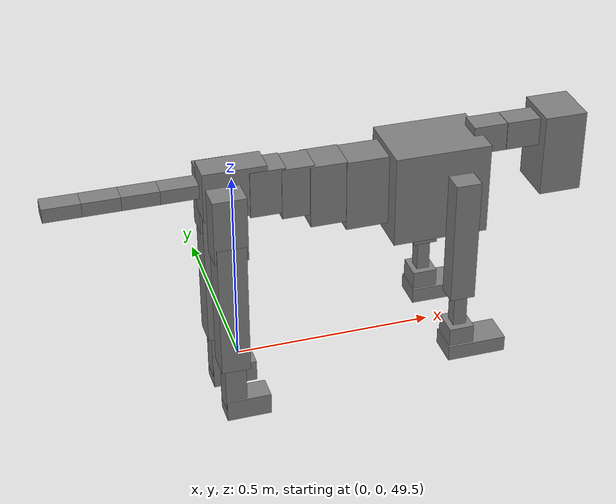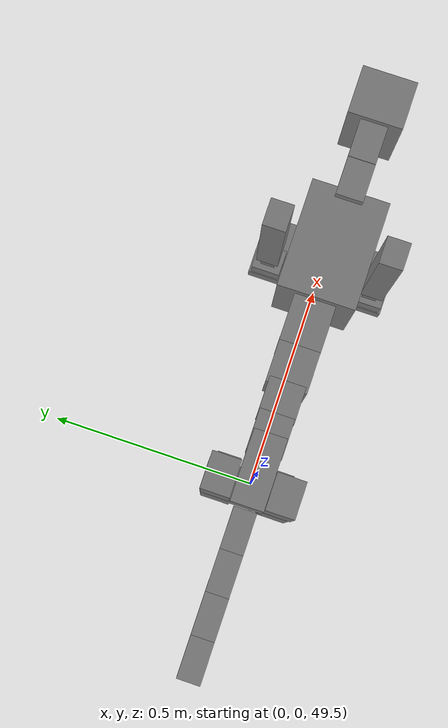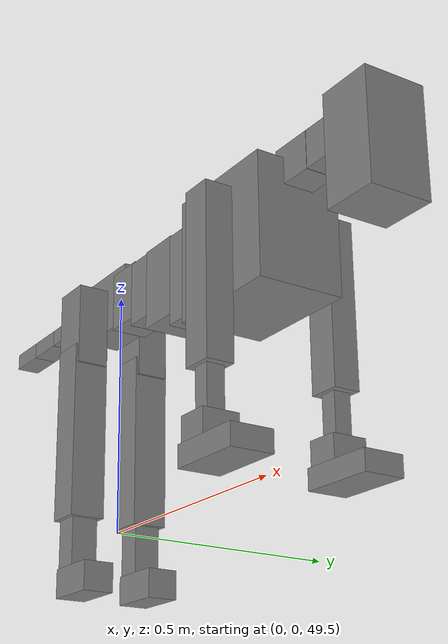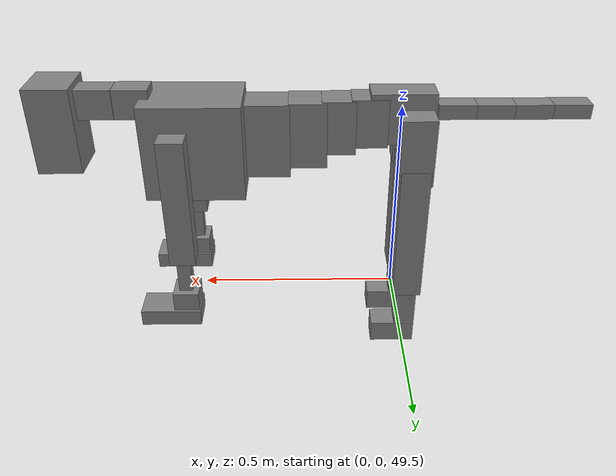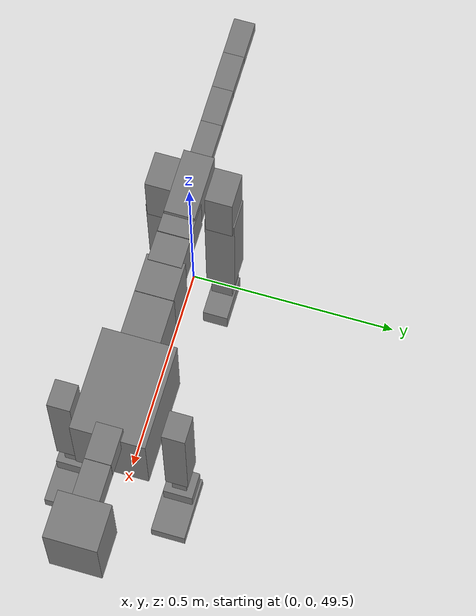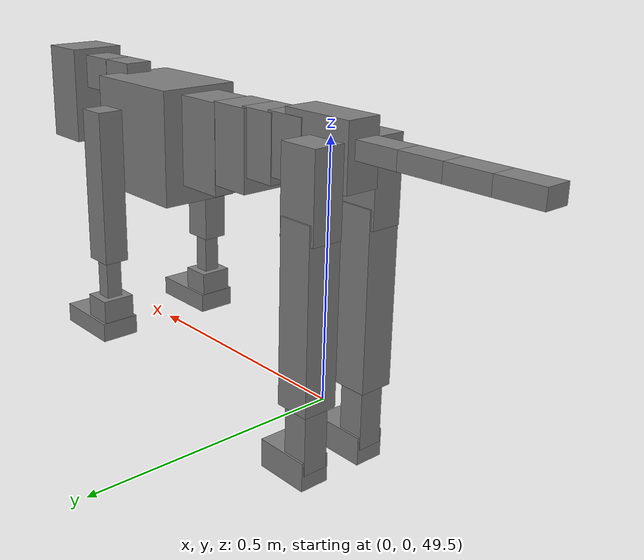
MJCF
<mujoco model="dog">

    <default>
        <joint armature="0.02" stiffness="1" damping="0.2" limited="true"/>
        <geom condim="3" friction="1 0.05 0.05" margin="0.01"/>
        <motor ctrllimited="true" ctrlrange="-1.0 1.0" forcelimited="true" gear="50"/>
    </default>

    <compiler inertiafromgeom="true" angle="radian"/>

    <option timestep="0.016" iterations="50" tolerance="1e-10" solver="Newton" jacobian="dense" cone="pyramidal"/>

    <size nconmax="20000" njmax="60000" nstack="5000000"/>
    <visual>
        <map force="0.1" zfar="30"/>
        <rgba haze="0.15 0.25 0.35 1"/>
        <quality shadowsize="2048"/>
        <global offwidth="800" offheight="800"/>
    </visual>

    <asset>
        <texture type="skybox" builtin="gradient" rgb1="0.3 0.5 0.7" rgb2="0 0 0" width="512" height="512"/>
        <texture name="texplane" type="2d" builtin="checker" rgb1=".2 .3 .4" rgb2=".1 0.15 0.2" width="512" height="512"
                 mark="cross" markrgb=".8 .8 .8"/>
        <texture name="texgeom" type="cube" builtin="flat" mark="cross" width="127" height="1278" rgb1="0.8 0.6 0.4"
                 rgb2="0.8 0.6 0.4" markrgb="1 1 1" random="0.01"/>

        <material name="matplane" reflectance="0.3" texture="texplane" texrepeat="1 1" texuniform="true"/>
        <material name="matgeom" texture="texgeom" texuniform="true" rgba="0.8 0.6 .4 1"/>
    </asset>

    <worldbody>
        <geom name="floor" pos="0 0 0" size="0 0 .25" type="plane" material="matplane" condim="3"/>

        <light directional="false" diffuse=".2 .2 .2" specular="0 0 0" pos="0 0 5" dir="0 0 -1" castshadow="false"/>
        <light mode="targetbodycom" target="torso" directional="false" diffuse=".8 .8 .8" specular="0.3 0.3 0.3"
               pos="0 0 4.0" dir="0 0 -1"/>

        <body name="root" pos="0 0 50">
            <freejoint name="root_1"/>
            <geom type="box" pos="0 0 -0.02" size="0.0774  0.0358  0.063" density="2030"/>

            <body name="spine1" pos="0.054 0 0">
                <joint name="spine1_y" axis="0 1 0" range="0 0.7" limited="true"/>
                <geom type="box" pos="0.02375 0 -0.03" size="0.04375  0.0375  0.05985" density="2030"/>

                <body name="spine2" pos="0.0612 0 0">
                    <joint name="spine2_y" axis="0 1 0" range="-0.15 0.15" limited="true"/>
                    <geom type="box" pos="0.03555  0  -0.04" size="0.04055  0.039  0.06615" density="2030"/>

                    <body name="spine3" pos="0.0730 0 0">
                        <joint name="spine3_y" axis="0 1 0" range="-0.15 0.15" limited="true"/>
                        <geom type="box" pos="0.03555  0  -0.057" size="0.04555  0.0445  0.081" density="2030"/>

                        <body name="spine4" pos="0.0780 0 0">
                            <joint name="spine4_y" axis="0 1 0" range="-0.15 0.15" limited="true"/>
                            <geom type="box" pos="0.05265  0  -0.07" size="0.05265  0.045  0.09135" density="2030"/>

                            <body name="torso" pos="0.1082 0 0">
                                <joint name="torso_y" axis="0 1 0" range="-0.15 0.15" limited="true"/>
                                <geom type="box" pos="0.11925  0  -0.085" size="0.11925  0.085  0.11745"
                                      density="2030"/>

                                <body name="neck1" pos="0.2160  0   0.0180">
                                    <joint name="neck1_y" axis="0 1 0" range="-1.2  -1" limited="true"/>
                                    <geom type="box" pos="0.0423  0  0" size="0.0423  0.03  0.036" density="2325"/>

                                    <body name="neck2" pos="0.0853  0  0">
                                        <joint name="neck2_y" axis="0 1 0" range="0.1  0" limited="true"/>
                                        <geom type="box" pos="0.0423  0  0" size="0.0423  0.03  0.036" density="2325"/>

                                        <body name="head" pos="0.0853  0  0">
                                            <joint name="head_y" axis="0 1 0" range="-0.3  -0.2" limited="true"/>
                                            <geom type="box" pos="0.0531  0  -0.055" size="0.0531  0.06  0.1044"
                                                  density="4030"/>

                                        </body>
                                    </body>
                                </body>

                                <body name="front_shoulder" pos="0.156  0   -0.0480">
                                    <joint name="front_shoulder_y" axis="0 1 0" range="-1 1.5" limited="true"/>
                                    <geom type="box" pos="0 0.13 -0.1342" size="0.0313  0.0267  0.1609" density="1158"/>
                                    <geom type="box" pos="0 -0.13 -0.1342" size="0.0313  0.0267  0.1609"
                                          density="1158"/>

                                    <body name="front_elbow" pos="0  0  -0.2684">
                                        <joint name="front_elbow_y" axis="0 1 0" range="-2 0" limited="true"/>
                                        <geom type="box" pos="0 0.13 -0.0610" size="0.0169  0.0173  0.0610"
                                              density="1081"/>
                                        <geom type="box" pos="0 -0.13 -0.0610" size="0.0169  0.0173  0.0610"
                                              density="1081"/>

                                        <body name="front_wrist" pos="0  0  -0.1221">
                                            <joint name="front_wrist_y" axis="0 1 0" range="-0.2 0" limited="true"/>
                                            <geom type="box" pos="0 0.13 -0.0250" size="0.0315  0.0350  0.0382"
                                                  density="1664"/>
                                            <geom type="box" pos="0 -0.13 -0.0250" size="0.0315  0.0350  0.0382"
                                                  density="1664"/>

                                            <body name="front_finger_end" pos="0  0  -0.0501">
                                                <joint name="front_finger_y" axis="0 1 0" range="-0.4 1"
                                                       limited="true"/>
                                                <geom type="box" pos="0.0406  0.13  -0.0052"
                                                      size="0.0745  0.0406  0.0202" density="1515"/>
                                                <geom type="box" pos="0.0406  -0.13  -0.0052"
                                                      size="0.0745  0.0406  0.0202" density="1515"/>

                                            </body>

                                        </body>
                                    </body>
                                </body>

                            </body>
                        </body>
                    </body>
                </body>
            </body>

            <body name="back_hip" pos="-0.03 0 -0.018">
                <joint name="back_hip_y" axis="0 1 0" range="-1.5 0.3" limited="true"/>
                <geom type="box" pos="0 0.07 -0.0603" size="0.0410  0.0321  0.0831" density="1154"/>
                <geom type="box" pos="0 -0.07 -0.0603" size="0.0410  0.0321  0.0831" density="1154"/>

                <body name="back_knee" pos="0  0  -0.1206">
                    <joint name="back_knee_y" axis="0 1 0" range="0 2.8" limited="true"/>
                    <geom type="box" pos="0 0.07 -0.1610" size="0.0360  0.0355  0.1766" density="1227"/>
                    <geom type="box" pos="0 -0.07 -0.1610" size="0.0360  0.0355  0.1766" density="1227"/>

                    <body name="back_ankle" pos="0  0  -0.3220">
                        <joint name="back_ankle_y" axis="0 1 0" range="-2.2 0" limited="true"/>
                        <geom type="box" pos="0 0.07 -0.0634" size="0.0265  0.0265  0.0746" density="1284"/>
                        <geom type="box" pos="0 -0.07 -0.0634" size="0.0265  0.0265  0.0746" density="1284"/>

                        <body name="back_toe_end" pos="0  0  -0.1267">
                            <joint name="back_toe_y" axis="0 1 0" range="-0.4 1" limited="true"/>
                            <geom type="box" pos="0.0307  0.07  -0.0135" size="0.0563  0.0307  0.0285" density="1515"/>
                            <geom type="box" pos="0.0307  -0.07  -0.0135" size="0.0563  0.0307  0.0285" density="1515"/>

                        </body>
                    </body>
                </body>
            </body>

            <body name="tail1" pos="-0.074 0 -0.006">
                <joint name="tail1_y" axis="0 1 0" range="-0.2 0.2" limited="true"/>
                <geom type="box" pos="-0.0536  0  0" size="0.045  0.025  0.0175" density="1587"/>

                <body name="tail2" pos="-0.09 0 0">
                    <joint name="tail2_y" axis="0 1 0" range="-0.2 0.2" limited="true"/>
                    <geom type="box" pos="-0.0536  0  0" size="0.045  0.025  0.0175" density="1587"/>

                    <body name="tail3" pos="-0.09 0 0">
                        <joint name="tail3_y" axis="0 1 0" range="-0.2 0.2" limited="true"/>
                        <geom type="box" pos="-0.0536  0  0" size="0.045  0.025  0.0175" density="1587"/>

                        <body name="tail4" pos="-0.09 0 0">
                            <joint name="tail4_y" axis="0 1 0" range="-0.2 0.2" limited="true"/>
                            <geom type="box" pos="-0.0536  0  0" size="0.045  0.025  0.0175" density="1587"/>

                        </body>
                    </body>
                </body>
            </body>
        </body>
    </worldbody>

    <actuator>
        <motor joint="spine1_y" forcerange="-150 150     "/>
        <motor joint="spine2_y" forcerange="-150 150     "/>
        <motor joint="spine3_y" forcerange="-150 150     "/>
        <motor joint="spine4_y" forcerange="-150 150     "/>
        <motor joint="torso_y" forcerange="-150 150     "/>
        <motor joint="neck1_y" forcerange="-100 100       "/>
        <motor joint="neck2_y" forcerange="-100 100       "/>
        <motor joint="head_y" forcerange="-150 150       "/>
        <motor joint="front_shoulder_y" forcerange="-148.14 129.97"/>
        <motor joint="front_elbow_y" forcerange="-106.15 119.64"/>
        <motor joint="front_wrist_y" forcerange="-149.88 129.89"/>
        <motor joint="front_finger_y" forcerange="-80.63 96.07"/>
        <motor joint="back_hip_y" forcerange="-260.69 367.84"/>
        <motor joint="back_knee_y" forcerange="-371.33 344.59"/>
        <motor joint="back_angle_y" forcerange="-116.22 208.40"/>
        <motor joint="back_toe_y" forcerange="-125.53 40.08"/>
        <motor joint="tail1_y" forcerange="-50 50     "/>
        <motor joint="tail2_y" forcerange="-50 50     "/>
        <motor joint="tail3_y" forcerange="-50 50     "/>
        <motor joint="tail4_y" forcerange="-50 50     "/>
    </actuator>
</mujoco>
